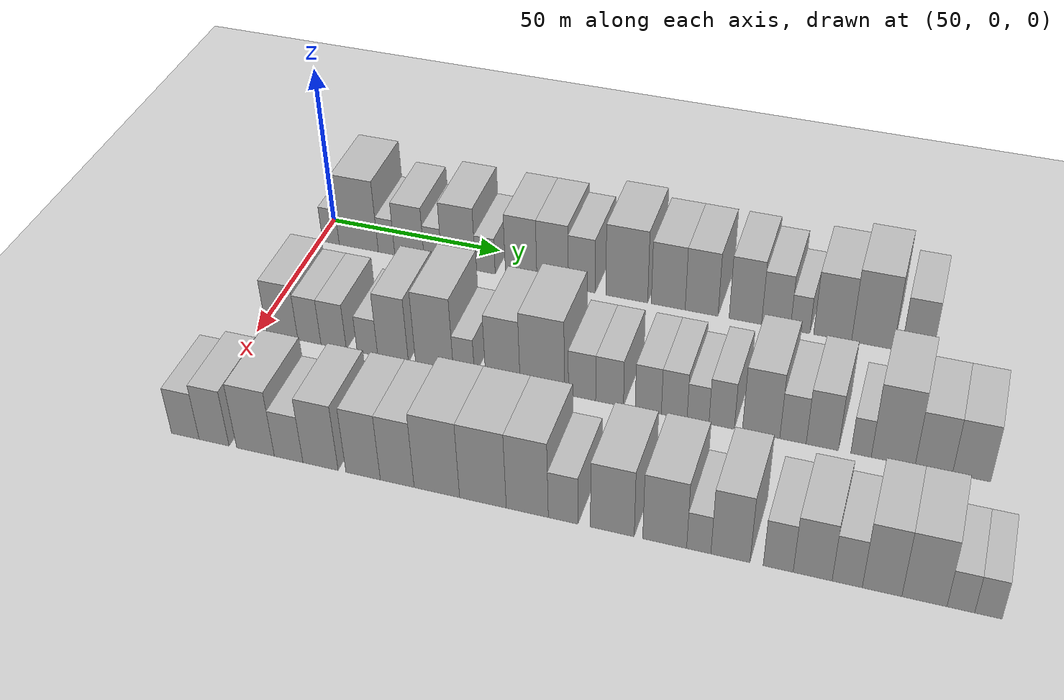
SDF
<sdf version="1.6">
 <world name="default">
  <include>
   <name>ground_plane_2</name>
   <uri>model://HANNAS_ground_plane</uri>
   <pose>100 0 0  0 0 0</pose>
  </include>
  <model name="building_43">
   <static>1</static>
   <pose>50.0000 3.2836 0 0.000000 0.000000 0.000000</pose>
   <link name="link">
    <pose>0 0 6.00 0 0 0</pose>
    <collision name="collision"><geometry><box><size>20.0000 5.0733 12.0000</size></box></geometry></collision>
    <visual name="visual">
     <cast_shadows>0</cast_shadows>
     <geometry><box><size>20.0000 5.0733 12.0000</size></box></geometry>
     <material>
      <script>
       <uri>model://HANNAS_wall/materials/scripts</uri>
       <uri>model://HANNAS_wall/materials/textures</uri>
       <name>vrc/HANNAS_wall</name>
      </script>
     </material>
    </visual>
   </link>
  </model>
  <model name="building_44">
   <static>1</static>
   <pose>50.0000 11.7085 0 0.000000 0.000000 0.000000</pose>
   <link name="link">
    <pose>0 0 12.00 0 0 0</pose>
    <collision name="collision"><geometry><box><size>20.0000 11.7766 24.0000</size></box></geometry></collision>
    <visual name="visual">
     <cast_shadows>0</cast_shadows>
     <geometry><box><size>20.0000 11.7766 24.0000</size></box></geometry>
     <material>
      <script>
       <uri>model://HANNAS_wall/materials/scripts</uri>
       <uri>model://HANNAS_wall/materials/textures</uri>
       <name>vrc/HANNAS_wall</name>
      </script>
     </material>
    </visual>
   </link>
  </model>
  <model name="building_45">
   <static>1</static>
   <pose>50.0000 20.0505 0 0.000000 0.000000 0.000000</pose>
   <link name="link">
    <pose>0 0 6.00 0 0 0</pose>
    <collision name="collision"><geometry><box><size>20.0000 4.9074 12.0000</size></box></geometry></collision>
    <visual name="visual">
     <cast_shadows>0</cast_shadows>
     <geometry><box><size>20.0000 4.9074 12.0000</size></box></geometry>
     <material>
      <script>
       <uri>model://HANNAS_wall/materials/scripts</uri>
       <uri>model://HANNAS_wall/materials/textures</uri>
       <name>vrc/HANNAS_wall</name>
      </script>
     </material>
    </visual>
   </link>
  </model>
  <model name="building_46">
   <static>1</static>
   <pose>50.0000 26.8823 0 0.000000 0.000000 0.000000</pose>
   <link name="link">
    <pose>0 0 9.00 0 0 0</pose>
    <collision name="collision"><geometry><box><size>20.0000 8.7563 18.0000</size></box></geometry></collision>
    <visual name="visual">
     <cast_shadows>0</cast_shadows>
     <geometry><box><size>20.0000 8.7563 18.0000</size></box></geometry>
     <material>
      <script>
       <uri>model://HANNAS_wall/materials/scripts</uri>
       <uri>model://HANNAS_wall/materials/textures</uri>
       <name>vrc/HANNAS_wall</name>
      </script>
     </material>
    </visual>
   </link>
  </model>
  <model name="building_47">
   <static>1</static>
   <pose>50.0000 33.8494 0 0.000000 0.000000 0.000000</pose>
   <link name="link">
    <pose>0 0 6.00 0 0 0</pose>
    <collision name="collision"><geometry><box><size>20.0000 5.1778 12.0000</size></box></geometry></collision>
    <visual name="visual">
     <cast_shadows>0</cast_shadows>
     <geometry><box><size>20.0000 5.1778 12.0000</size></box></geometry>
     <material>
      <script>
       <uri>model://HANNAS_wall/materials/scripts</uri>
       <uri>model://HANNAS_wall/materials/textures</uri>
       <name>vrc/HANNAS_wall</name>
      </script>
     </material>
    </visual>
   </link>
  </model>
  <model name="building_48">
   <static>1</static>
   <pose>50.0000 41.3604 0 0.000000 0.000000 0.000000</pose>
   <link name="link">
    <pose>0 0 10.50 0 0 0</pose>
    <collision name="collision"><geometry><box><size>20.0000 9.8442 21.0000</size></box></geometry></collision>
    <visual name="visual">
     <cast_shadows>0</cast_shadows>
     <geometry><box><size>20.0000 9.8442 21.0000</size></box></geometry>
     <material>
      <script>
       <uri>model://HANNAS_wall/materials/scripts</uri>
       <uri>model://HANNAS_wall/materials/textures</uri>
       <name>vrc/HANNAS_wall</name>
      </script>
     </material>
    </visual>
   </link>
  </model>
  <model name="building_49">
   <static>1</static>
   <pose>50.0000 49.1324 0 0.000000 0.000000 0.000000</pose>
   <link name="link">
    <pose>0 0 6.00 0 0 0</pose>
    <collision name="collision"><geometry><box><size>20.0000 5.6998 12.0000</size></box></geometry></collision>
    <visual name="visual">
     <cast_shadows>0</cast_shadows>
     <geometry><box><size>20.0000 5.6998 12.0000</size></box></geometry>
     <material>
      <script>
       <uri>model://HANNAS_wall/materials/scripts</uri>
       <uri>model://HANNAS_wall/materials/textures</uri>
       <name>vrc/HANNAS_wall</name>
      </script>
     </material>
    </visual>
   </link>
  </model>
  <model name="building_50">
   <static>1</static>
   <pose>50.0000 59.4849 0 0.000000 0.000000 0.000000</pose>
   <link name="link">
    <pose>0 0 10.50 0 0 0</pose>
    <collision name="collision"><geometry><box><size>20.0000 9.0052 21.0000</size></box></geometry></collision>
    <visual name="visual">
     <cast_shadows>0</cast_shadows>
     <geometry><box><size>20.0000 9.0052 21.0000</size></box></geometry>
     <material>
      <script>
       <uri>model://HANNAS_wall/materials/scripts</uri>
       <uri>model://HANNAS_wall/materials/textures</uri>
       <name>vrc/HANNAS_wall</name>
      </script>
     </material>
    </visual>
   </link>
  </model>
  <model name="building_51">
   <static>1</static>
   <pose>50.0000 68.4617 0 0.000000 0.000000 0.000000</pose>
   <link name="link">
    <pose>0 0 10.50 0 0 0</pose>
    <collision name="collision"><geometry><box><size>20.0000 8.9484 21.0000</size></box></geometry></collision>
    <visual name="visual">
     <cast_shadows>0</cast_shadows>
     <geometry><box><size>20.0000 8.9484 21.0000</size></box></geometry>
     <material>
      <script>
       <uri>model://HANNAS_wall/materials/scripts</uri>
       <uri>model://HANNAS_wall/materials/textures</uri>
       <name>vrc/HANNAS_wall</name>
      </script>
     </material>
    </visual>
   </link>
  </model>
  <model name="building_52">
   <static>1</static>
   <pose>50.0000 76.6912 0 0.000000 0.000000 0.000000</pose>
   <link name="link">
    <pose>0 0 9.00 0 0 0</pose>
    <collision name="collision"><geometry><box><size>20.0000 7.5105 18.0000</size></box></geometry></collision>
    <visual name="visual">
     <cast_shadows>0</cast_shadows>
     <geometry><box><size>20.0000 7.5105 18.0000</size></box></geometry>
     <material>
      <script>
       <uri>model://HANNAS_wall/materials/scripts</uri>
       <uri>model://HANNAS_wall/materials/textures</uri>
       <name>vrc/HANNAS_wall</name>
      </script>
     </material>
    </visual>
   </link>
  </model>
  <model name="building_53">
   <static>1</static>
   <pose>50.0000 89.2571 0 0.000000 0.000000 0.000000</pose>
   <link name="link">
    <pose>0 0 12.00 0 0 0</pose>
    <collision name="collision"><geometry><box><size>20.0000 11.6213 24.0000</size></box></geometry></collision>
    <visual name="visual">
     <cast_shadows>0</cast_shadows>
     <geometry><box><size>20.0000 11.6213 24.0000</size></box></geometry>
     <material>
      <script>
       <uri>model://HANNAS_wall/materials/scripts</uri>
       <uri>model://HANNAS_wall/materials/textures</uri>
       <name>vrc/HANNAS_wall</name>
      </script>
     </material>
    </visual>
   </link>
  </model>
  <model name="building_54">
   <static>1</static>
   <pose>50.0000 100.7231 0 0.000000 0.000000 0.000000</pose>
   <link name="link">
    <pose>0 0 10.50 0 0 0</pose>
    <collision name="collision"><geometry><box><size>20.0000 9.3108 21.0000</size></box></geometry></collision>
    <visual name="visual">
     <cast_shadows>0</cast_shadows>
     <geometry><box><size>20.0000 9.3108 21.0000</size></box></geometry>
     <material>
      <script>
       <uri>model://HANNAS_wall/materials/scripts</uri>
       <uri>model://HANNAS_wall/materials/textures</uri>
       <name>vrc/HANNAS_wall</name>
      </script>
     </material>
    </visual>
   </link>
  </model>
  <model name="building_55">
   <static>1</static>
   <pose>50.0000 109.8539 0 0.000000 0.000000 0.000000</pose>
   <link name="link">
    <pose>0 0 10.50 0 0 0</pose>
    <collision name="collision"><geometry><box><size>20.0000 8.9509 21.0000</size></box></geometry></collision>
    <visual name="visual">
     <cast_shadows>0</cast_shadows>
     <geometry><box><size>20.0000 8.9509 21.0000</size></box></geometry>
     <material>
      <script>
       <uri>model://HANNAS_wall/materials/scripts</uri>
       <uri>model://HANNAS_wall/materials/textures</uri>
       <name>vrc/HANNAS_wall</name>
      </script>
     </material>
    </visual>
   </link>
  </model>
  <model name="building_56">
   <static>1</static>
   <pose>50.0000 121.6870 0 0.000000 0.000000 0.000000</pose>
   <link name="link">
    <pose>0 0 10.50 0 0 0</pose>
    <collision name="collision"><geometry><box><size>20.0000 8.7154 21.0000</size></box></geometry></collision>
    <visual name="visual">
     <cast_shadows>0</cast_shadows>
     <geometry><box><size>20.0000 8.7154 21.0000</size></box></geometry>
     <material>
      <script>
       <uri>model://HANNAS_wall/materials/scripts</uri>
       <uri>model://HANNAS_wall/materials/textures</uri>
       <name>vrc/HANNAS_wall</name>
      </script>
     </material>
    </visual>
   </link>
  </model>
  <model name="building_57">
   <static>1</static>
   <pose>50.0000 129.8786 0 0.000000 0.000000 0.000000</pose>
   <link name="link">
    <pose>0 0 9.00 0 0 0</pose>
    <collision name="collision"><geometry><box><size>20.0000 7.6677 18.0000</size></box></geometry></collision>
    <visual name="visual">
     <cast_shadows>0</cast_shadows>
     <geometry><box><size>20.0000 7.6677 18.0000</size></box></geometry>
     <material>
      <script>
       <uri>model://HANNAS_wall/materials/scripts</uri>
       <uri>model://HANNAS_wall/materials/textures</uri>
       <name>vrc/HANNAS_wall</name>
      </script>
     </material>
    </visual>
   </link>
  </model>
  <model name="building_58">
   <static>1</static>
   <pose>50.0000 136.3000 0 0.000000 0.000000 0.000000</pose>
   <link name="link">
    <pose>0 0 6.00 0 0 0</pose>
    <collision name="collision"><geometry><box><size>20.0000 5.1751 12.0000</size></box></geometry></collision>
    <visual name="visual">
     <cast_shadows>0</cast_shadows>
     <geometry><box><size>20.0000 5.1751 12.0000</size></box></geometry>
     <material>
      <script>
       <uri>model://HANNAS_wall/materials/scripts</uri>
       <uri>model://HANNAS_wall/materials/textures</uri>
       <name>vrc/HANNAS_wall</name>
      </script>
     </material>
    </visual>
   </link>
  </model>
  <model name="building_59">
   <static>1</static>
   <pose>50.0000 144.8464 0 0.000000 0.000000 0.000000</pose>
   <link name="link">
    <pose>0 0 10.50 0 0 0</pose>
    <collision name="collision"><geometry><box><size>20.0000 9.9177 21.0000</size></box></geometry></collision>
    <visual name="visual">
     <cast_shadows>0</cast_shadows>
     <geometry><box><size>20.0000 9.9177 21.0000</size></box></geometry>
     <material>
      <script>
       <uri>model://HANNAS_wall/materials/scripts</uri>
       <uri>model://HANNAS_wall/materials/textures</uri>
       <name>vrc/HANNAS_wall</name>
      </script>
     </material>
    </visual>
   </link>
  </model>
  <model name="building_60">
   <static>1</static>
   <pose>50.0000 155.2566 0 0.000000 0.000000 0.000000</pose>
   <link name="link">
    <pose>0 0 12.00 0 0 0</pose>
    <collision name="collision"><geometry><box><size>20.0000 10.9029 24.0000</size></box></geometry></collision>
    <visual name="visual">
     <cast_shadows>0</cast_shadows>
     <geometry><box><size>20.0000 10.9029 24.0000</size></box></geometry>
     <material>
      <script>
       <uri>model://HANNAS_wall/materials/scripts</uri>
       <uri>model://HANNAS_wall/materials/textures</uri>
       <name>vrc/HANNAS_wall</name>
      </script>
     </material>
    </visual>
   </link>
  </model>
  <model name="building_61">
   <static>1</static>
   <pose>50.0000 166.7116 0 0.000000 0.000000 0.000000</pose>
   <link name="link">
    <pose>0 0 9.00 0 0 0</pose>
    <collision name="collision"><geometry><box><size>20.0000 8.0071 18.0000</size></box></geometry></collision>
    <visual name="visual">
     <cast_shadows>0</cast_shadows>
     <geometry><box><size>20.0000 8.0071 18.0000</size></box></geometry>
     <material>
      <script>
       <uri>model://HANNAS_wall/materials/scripts</uri>
       <uri>model://HANNAS_wall/materials/textures</uri>
       <name>vrc/HANNAS_wall</name>
      </script>
     </material>
    </visual>
   </link>
  </model>
  <model name="building_124">
   <static>1</static>
   <pose>90.0000 7.0804 0 0.000000 0.000000 0.000000</pose>
   <link name="link">
    <pose>0 0 9.00 0 0 0</pose>
    <collision name="collision"><geometry><box><size>20.0000 8.8271 18.0000</size></box></geometry></collision>
    <visual name="visual">
     <cast_shadows>0</cast_shadows>
     <geometry><box><size>20.0000 8.8271 18.0000</size></box></geometry>
     <material>
      <script>
       <uri>model://HANNAS_wall/materials/scripts</uri>
       <uri>model://HANNAS_wall/materials/textures</uri>
       <name>vrc/HANNAS_wall</name>
      </script>
     </material>
    </visual>
   </link>
  </model>
  <model name="building_125">
   <static>1</static>
   <pose>90.0000 14.7527 0 0.000000 0.000000 0.000000</pose>
   <link name="link">
    <pose>0 0 7.50 0 0 0</pose>
    <collision name="collision"><geometry><box><size>20.0000 6.5176 15.0000</size></box></geometry></collision>
    <visual name="visual">
     <cast_shadows>0</cast_shadows>
     <geometry><box><size>20.0000 6.5176 15.0000</size></box></geometry>
     <material>
      <script>
       <uri>model://HANNAS_wall/materials/scripts</uri>
       <uri>model://HANNAS_wall/materials/textures</uri>
       <name>vrc/HANNAS_wall</name>
      </script>
     </material>
    </visual>
   </link>
  </model>
  <model name="building_126">
   <static>1</static>
   <pose>90.0000 21.5738 0 0.000000 0.000000 0.000000</pose>
   <link name="link">
    <pose>0 0 7.50 0 0 0</pose>
    <collision name="collision"><geometry><box><size>20.0000 7.1247 15.0000</size></box></geometry></collision>
    <visual name="visual">
     <cast_shadows>0</cast_shadows>
     <geometry><box><size>20.0000 7.1247 15.0000</size></box></geometry>
     <material>
      <script>
       <uri>model://HANNAS_wall/materials/scripts</uri>
       <uri>model://HANNAS_wall/materials/textures</uri>
       <name>vrc/HANNAS_wall</name>
      </script>
     </material>
    </visual>
   </link>
  </model>
  <model name="building_127">
   <static>1</static>
   <pose>90.0000 30.9938 0 0.000000 0.000000 0.000000</pose>
   <link name="link">
    <pose>0 0 6.00 0 0 0</pose>
    <collision name="collision"><geometry><box><size>20.0000 5.7154 12.0000</size></box></geometry></collision>
    <visual name="visual">
     <cast_shadows>0</cast_shadows>
     <geometry><box><size>20.0000 5.7154 12.0000</size></box></geometry>
     <material>
      <script>
       <uri>model://HANNAS_wall/materials/scripts</uri>
       <uri>model://HANNAS_wall/materials/textures</uri>
       <name>vrc/HANNAS_wall</name>
      </script>
     </material>
    </visual>
   </link>
  </model>
  <model name="building_128">
   <static>1</static>
   <pose>90.0000 38.0644 0 0.000000 0.000000 0.000000</pose>
   <link name="link">
    <pose>0 0 10.50 0 0 0</pose>
    <collision name="collision"><geometry><box><size>20.0000 8.4258 21.0000</size></box></geometry></collision>
    <visual name="visual">
     <cast_shadows>0</cast_shadows>
     <geometry><box><size>20.0000 8.4258 21.0000</size></box></geometry>
     <material>
      <script>
       <uri>model://HANNAS_wall/materials/scripts</uri>
       <uri>model://HANNAS_wall/materials/textures</uri>
       <name>vrc/HANNAS_wall</name>
      </script>
     </material>
    </visual>
   </link>
  </model>
  <model name="building_129">
   <static>1</static>
   <pose>90.0000 49.4098 0 0.000000 0.000000 0.000000</pose>
   <link name="link">
    <pose>0 0 12.00 0 0 0</pose>
    <collision name="collision"><geometry><box><size>20.0000 10.2650 24.0000</size></box></geometry></collision>
    <visual name="visual">
     <cast_shadows>0</cast_shadows>
     <geometry><box><size>20.0000 10.2650 24.0000</size></box></geometry>
     <material>
      <script>
       <uri>model://HANNAS_wall/materials/scripts</uri>
       <uri>model://HANNAS_wall/materials/textures</uri>
       <name>vrc/HANNAS_wall</name>
      </script>
     </material>
    </visual>
   </link>
  </model>
  <model name="building_130">
   <static>1</static>
   <pose>90.0000 57.3746 0 0.000000 0.000000 0.000000</pose>
   <link name="link">
    <pose>0 0 6.00 0 0 0</pose>
    <collision name="collision"><geometry><box><size>20.0000 5.6645 12.0000</size></box></geometry></collision>
    <visual name="visual">
     <cast_shadows>0</cast_shadows>
     <geometry><box><size>20.0000 5.6645 12.0000</size></box></geometry>
     <material>
      <script>
       <uri>model://HANNAS_wall/materials/scripts</uri>
       <uri>model://HANNAS_wall/materials/textures</uri>
       <name>vrc/HANNAS_wall</name>
      </script>
     </material>
    </visual>
   </link>
  </model>
  <model name="building_131">
   <static>1</static>
   <pose>90.0000 67.7954 0 0.000000 0.000000 0.000000</pose>
   <link name="link">
    <pose>0 0 10.50 0 0 0</pose>
    <collision name="collision"><geometry><box><size>20.0000 9.1771 21.0000</size></box></geometry></collision>
    <visual name="visual">
     <cast_shadows>0</cast_shadows>
     <geometry><box><size>20.0000 9.1771 21.0000</size></box></geometry>
     <material>
      <script>
       <uri>model://HANNAS_wall/materials/scripts</uri>
       <uri>model://HANNAS_wall/materials/textures</uri>
       <name>vrc/HANNAS_wall</name>
      </script>
     </material>
    </visual>
   </link>
  </model>
  <model name="building_132">
   <static>1</static>
   <pose>90.0000 78.2445 0 0.000000 0.000000 0.000000</pose>
   <link name="link">
    <pose>0 0 12.00 0 0 0</pose>
    <collision name="collision"><geometry><box><size>20.0000 11.7213 24.0000</size></box></geometry></collision>
    <visual name="visual">
     <cast_shadows>0</cast_shadows>
     <geometry><box><size>20.0000 11.7213 24.0000</size></box></geometry>
     <material>
      <script>
       <uri>model://HANNAS_wall/materials/scripts</uri>
       <uri>model://HANNAS_wall/materials/textures</uri>
       <name>vrc/HANNAS_wall</name>
      </script>
     </material>
    </visual>
   </link>
  </model>
  <model name="building_133">
   <static>1</static>
   <pose>90.0000 88.6313 0 0.000000 0.000000 0.000000</pose>
   <link name="link">
    <pose>0 0 7.50 0 0 0</pose>
    <collision name="collision"><geometry><box><size>20.0000 7.0521 15.0000</size></box></geometry></collision>
    <visual name="visual">
     <cast_shadows>0</cast_shadows>
     <geometry><box><size>20.0000 7.0521 15.0000</size></box></geometry>
     <material>
      <script>
       <uri>model://HANNAS_wall/materials/scripts</uri>
       <uri>model://HANNAS_wall/materials/textures</uri>
       <name>vrc/HANNAS_wall</name>
      </script>
     </material>
    </visual>
   </link>
  </model>
  <model name="building_134">
   <static>1</static>
   <pose>90.0000 95.7461 0 0.000000 0.000000 0.000000</pose>
   <link name="link">
    <pose>0 0 7.50 0 0 0</pose>
    <collision name="collision"><geometry><box><size>20.0000 7.1775 15.0000</size></box></geometry></collision>
    <visual name="visual">
     <cast_shadows>0</cast_shadows>
     <geometry><box><size>20.0000 7.1775 15.0000</size></box></geometry>
     <material>
      <script>
       <uri>model://HANNAS_wall/materials/scripts</uri>
       <uri>model://HANNAS_wall/materials/textures</uri>
       <name>vrc/HANNAS_wall</name>
      </script>
     </material>
    </visual>
   </link>
  </model>
  <model name="building_135">
   <static>1</static>
   <pose>90.0000 105.6737 0 0.000000 0.000000 0.000000</pose>
   <link name="link">
    <pose>0 0 7.50 0 0 0</pose>
    <collision name="collision"><geometry><box><size>20.0000 6.6779 15.0000</size></box></geometry></collision>
    <visual name="visual">
     <cast_shadows>0</cast_shadows>
     <geometry><box><size>20.0000 6.6779 15.0000</size></box></geometry>
     <material>
      <script>
       <uri>model://HANNAS_wall/materials/scripts</uri>
       <uri>model://HANNAS_wall/materials/textures</uri>
       <name>vrc/HANNAS_wall</name>
      </script>
     </material>
    </visual>
   </link>
  </model>
  <model name="building_136">
   <static>1</static>
   <pose>90.0000 112.2711 0 0.000000 0.000000 0.000000</pose>
   <link name="link">
    <pose>0 0 7.50 0 0 0</pose>
    <collision name="collision"><geometry><box><size>20.0000 6.5168 15.0000</size></box></geometry></collision>
    <visual name="visual">
     <cast_shadows>0</cast_shadows>
     <geometry><box><size>20.0000 6.5168 15.0000</size></box></geometry>
     <material>
      <script>
       <uri>model://HANNAS_wall/materials/scripts</uri>
       <uri>model://HANNAS_wall/materials/textures</uri>
       <name>vrc/HANNAS_wall</name>
      </script>
     </material>
    </visual>
   </link>
  </model>
  <model name="building_137">
   <static>1</static>
   <pose>90.0000 118.2828 0 0.000000 0.000000 0.000000</pose>
   <link name="link">
    <pose>0 0 6.00 0 0 0</pose>
    <collision name="collision"><geometry><box><size>20.0000 5.5065 12.0000</size></box></geometry></collision>
    <visual name="visual">
     <cast_shadows>0</cast_shadows>
     <geometry><box><size>20.0000 5.5065 12.0000</size></box></geometry>
     <material>
      <script>
       <uri>model://HANNAS_wall/materials/scripts</uri>
       <uri>model://HANNAS_wall/materials/textures</uri>
       <name>vrc/HANNAS_wall</name>
      </script>
     </material>
    </visual>
   </link>
  </model>
  <model name="building_138">
   <static>1</static>
   <pose>90.0000 124.2085 0 0.000000 0.000000 0.000000</pose>
   <link name="link">
    <pose>0 0 7.50 0 0 0</pose>
    <collision name="collision"><geometry><box><size>20.0000 6.3449 15.0000</size></box></geometry></collision>
    <visual name="visual">
     <cast_shadows>0</cast_shadows>
     <geometry><box><size>20.0000 6.3449 15.0000</size></box></geometry>
     <material>
      <script>
       <uri>model://HANNAS_wall/materials/scripts</uri>
       <uri>model://HANNAS_wall/materials/textures</uri>
       <name>vrc/HANNAS_wall</name>
      </script>
     </material>
    </visual>
   </link>
  </model>
  <model name="building_139">
   <static>1</static>
   <pose>90.0000 133.9994 0 0.000000 0.000000 0.000000</pose>
   <link name="link">
    <pose>0 0 10.50 0 0 0</pose>
    <collision name="collision"><geometry><box><size>20.0000 9.2369 21.0000</size></box></geometry></collision>
    <visual name="visual">
     <cast_shadows>0</cast_shadows>
     <geometry><box><size>20.0000 9.2369 21.0000</size></box></geometry>
     <material>
      <script>
       <uri>model://HANNAS_wall/materials/scripts</uri>
       <uri>model://HANNAS_wall/materials/textures</uri>
       <name>vrc/HANNAS_wall</name>
      </script>
     </material>
    </visual>
   </link>
  </model>
  <model name="building_140">
   <static>1</static>
   <pose>90.0000 141.8524 0 0.000000 0.000000 0.000000</pose>
   <link name="link">
    <pose>0 0 7.50 0 0 0</pose>
    <collision name="collision"><geometry><box><size>20.0000 6.4691 15.0000</size></box></geometry></collision>
    <visual name="visual">
     <cast_shadows>0</cast_shadows>
     <geometry><box><size>20.0000 6.4691 15.0000</size></box></geometry>
     <material>
      <script>
       <uri>model://HANNAS_wall/materials/scripts</uri>
       <uri>model://HANNAS_wall/materials/textures</uri>
       <name>vrc/HANNAS_wall</name>
      </script>
     </material>
    </visual>
   </link>
  </model>
  <model name="building_141">
   <static>1</static>
   <pose>90.0000 149.0000 0 0.000000 0.000000 0.000000</pose>
   <link name="link">
    <pose>0 0 9.00 0 0 0</pose>
    <collision name="collision"><geometry><box><size>20.0000 7.8261 18.0000</size></box></geometry></collision>
    <visual name="visual">
     <cast_shadows>0</cast_shadows>
     <geometry><box><size>20.0000 7.8261 18.0000</size></box></geometry>
     <material>
      <script>
       <uri>model://HANNAS_wall/materials/scripts</uri>
       <uri>model://HANNAS_wall/materials/textures</uri>
       <name>vrc/HANNAS_wall</name>
      </script>
     </material>
    </visual>
   </link>
  </model>
  <model name="building_142">
   <static>1</static>
   <pose>90.0000 158.3597 0 0.000000 0.000000 0.000000</pose>
   <link name="link">
    <pose>0 0 6.00 0 0 0</pose>
    <collision name="collision"><geometry><box><size>20.0000 4.8932 12.0000</size></box></geometry></collision>
    <visual name="visual">
     <cast_shadows>0</cast_shadows>
     <geometry><box><size>20.0000 4.8932 12.0000</size></box></geometry>
     <material>
      <script>
       <uri>model://HANNAS_wall/materials/scripts</uri>
       <uri>model://HANNAS_wall/materials/textures</uri>
       <name>vrc/HANNAS_wall</name>
      </script>
     </material>
    </visual>
   </link>
  </model>
  <model name="building_143">
   <static>1</static>
   <pose>90.0000 166.0182 0 0.000000 0.000000 0.000000</pose>
   <link name="link">
    <pose>0 0 12.00 0 0 0</pose>
    <collision name="collision"><geometry><box><size>20.0000 10.4238 24.0000</size></box></geometry></collision>
    <visual name="visual">
     <cast_shadows>0</cast_shadows>
     <geometry><box><size>20.0000 10.4238 24.0000</size></box></geometry>
     <material>
      <script>
       <uri>model://HANNAS_wall/materials/scripts</uri>
       <uri>model://HANNAS_wall/materials/textures</uri>
       <name>vrc/HANNAS_wall</name>
      </script>
     </material>
    </visual>
   </link>
  </model>
  <model name="building_144">
   <static>1</static>
   <pose>90.0000 175.6420 0 0.000000 0.000000 0.000000</pose>
   <link name="link">
    <pose>0 0 9.00 0 0 0</pose>
    <collision name="collision"><geometry><box><size>20.0000 8.8238 18.0000</size></box></geometry></collision>
    <visual name="visual">
     <cast_shadows>0</cast_shadows>
     <geometry><box><size>20.0000 8.8238 18.0000</size></box></geometry>
     <material>
      <script>
       <uri>model://HANNAS_wall/materials/scripts</uri>
       <uri>model://HANNAS_wall/materials/textures</uri>
       <name>vrc/HANNAS_wall</name>
      </script>
     </material>
    </visual>
   </link>
  </model>
  <model name="building_145">
   <static>1</static>
   <pose>90.0000 184.5113 0 0.000000 0.000000 0.000000</pose>
   <link name="link">
    <pose>0 0 9.00 0 0 0</pose>
    <collision name="collision"><geometry><box><size>20.0000 8.9148 18.0000</size></box></geometry></collision>
    <visual name="visual">
     <cast_shadows>0</cast_shadows>
     <geometry><box><size>20.0000 8.9148 18.0000</size></box></geometry>
     <material>
      <script>
       <uri>model://HANNAS_wall/materials/scripts</uri>
       <uri>model://HANNAS_wall/materials/textures</uri>
       <name>vrc/HANNAS_wall</name>
      </script>
     </material>
    </visual>
   </link>
  </model>
  <model name="building_214">
   <static>1</static>
   <pose>130.0000 0.0378 0 0.000000 0.000000 0.000000</pose>
   <link name="link">
    <pose>0 0 7.50 0 0 0</pose>
    <collision name="collision"><geometry><box><size>20.0000 7.4115 15.0000</size></box></geometry></collision>
    <visual name="visual">
     <cast_shadows>0</cast_shadows>
     <geometry><box><size>20.0000 7.4115 15.0000</size></box></geometry>
     <material>
      <script>
       <uri>model://HANNAS_wall/materials/scripts</uri>
       <uri>model://HANNAS_wall/materials/textures</uri>
       <name>vrc/HANNAS_wall</name>
      </script>
     </material>
    </visual>
   </link>
  </model>
  <model name="building_215">
   <static>1</static>
   <pose>130.0000 7.7299 0 0.000000 0.000000 0.000000</pose>
   <link name="link">
    <pose>0 0 9.00 0 0 0</pose>
    <collision name="collision"><geometry><box><size>20.0000 7.9728 18.0000</size></box></geometry></collision>
    <visual name="visual">
     <cast_shadows>0</cast_shadows>
     <geometry><box><size>20.0000 7.9728 18.0000</size></box></geometry>
     <material>
      <script>
       <uri>model://HANNAS_wall/materials/scripts</uri>
       <uri>model://HANNAS_wall/materials/textures</uri>
       <name>vrc/HANNAS_wall</name>
      </script>
     </material>
    </visual>
   </link>
  </model>
  <model name="building_216">
   <static>1</static>
   <pose>130.0000 18.6816 0 0.000000 0.000000 0.000000</pose>
   <link name="link">
    <pose>0 0 10.50 0 0 0</pose>
    <collision name="collision"><geometry><box><size>20.0000 9.9307 21.0000</size></box></geometry></collision>
    <visual name="visual">
     <cast_shadows>0</cast_shadows>
     <geometry><box><size>20.0000 9.9307 21.0000</size></box></geometry>
     <material>
      <script>
       <uri>model://HANNAS_wall/materials/scripts</uri>
       <uri>model://HANNAS_wall/materials/textures</uri>
       <name>vrc/HANNAS_wall</name>
      </script>
     </material>
    </visual>
   </link>
  </model>
  <model name="building_217">
   <static>1</static>
   <pose>130.0000 27.3718 0 0.000000 0.000000 0.000000</pose>
   <link name="link">
    <pose>0 0 7.50 0 0 0</pose>
    <collision name="collision"><geometry><box><size>20.0000 7.4497 15.0000</size></box></geometry></collision>
    <visual name="visual">
     <cast_shadows>0</cast_shadows>
     <geometry><box><size>20.0000 7.4497 15.0000</size></box></geometry>
     <material>
      <script>
       <uri>model://HANNAS_wall/materials/scripts</uri>
       <uri>model://HANNAS_wall/materials/textures</uri>
       <name>vrc/HANNAS_wall</name>
      </script>
     </material>
    </visual>
   </link>
  </model>
  <model name="building_218">
   <static>1</static>
   <pose>130.0000 35.6309 0 0.000000 0.000000 0.000000</pose>
   <link name="link">
    <pose>0 0 10.50 0 0 0</pose>
    <collision name="collision"><geometry><box><size>20.0000 9.0686 21.0000</size></box></geometry></collision>
    <visual name="visual">
     <cast_shadows>0</cast_shadows>
     <geometry><box><size>20.0000 9.0686 21.0000</size></box></geometry>
     <material>
      <script>
       <uri>model://HANNAS_wall/materials/scripts</uri>
       <uri>model://HANNAS_wall/materials/textures</uri>
       <name>vrc/HANNAS_wall</name>
      </script>
     </material>
    </visual>
   </link>
  </model>
  <model name="building_219">
   <static>1</static>
   <pose>130.0000 46.5408 0 0.000000 0.000000 0.000000</pose>
   <link name="link">
    <pose>0 0 10.50 0 0 0</pose>
    <collision name="collision"><geometry><box><size>20.0000 8.7511 21.0000</size></box></geometry></collision>
    <visual name="visual">
     <cast_shadows>0</cast_shadows>
     <geometry><box><size>20.0000 8.7511 21.0000</size></box></geometry>
     <material>
      <script>
       <uri>model://HANNAS_wall/materials/scripts</uri>
       <uri>model://HANNAS_wall/materials/textures</uri>
       <name>vrc/HANNAS_wall</name>
      </script>
     </material>
    </visual>
   </link>
  </model>
  <model name="building_220">
   <static>1</static>
   <pose>130.0000 55.1814 0 0.000000 0.000000 0.000000</pose>
   <link name="link">
    <pose>0 0 10.50 0 0 0</pose>
    <collision name="collision"><geometry><box><size>20.0000 8.5300 21.0000</size></box></geometry></collision>
    <visual name="visual">
     <cast_shadows>0</cast_shadows>
     <geometry><box><size>20.0000 8.5300 21.0000</size></box></geometry>
     <material>
      <script>
       <uri>model://HANNAS_wall/materials/scripts</uri>
       <uri>model://HANNAS_wall/materials/textures</uri>
       <name>vrc/HANNAS_wall</name>
      </script>
     </material>
    </visual>
   </link>
  </model>
  <model name="building_221">
   <static>1</static>
   <pose>130.0000 65.1038 0 0.000000 0.000000 0.000000</pose>
   <link name="link">
    <pose>0 0 12.00 0 0 0</pose>
    <collision name="collision"><geometry><box><size>20.0000 11.3148 24.0000</size></box></geometry></collision>
    <visual name="visual">
     <cast_shadows>0</cast_shadows>
     <geometry><box><size>20.0000 11.3148 24.0000</size></box></geometry>
     <material>
      <script>
       <uri>model://HANNAS_wall/materials/scripts</uri>
       <uri>model://HANNAS_wall/materials/textures</uri>
       <name>vrc/HANNAS_wall</name>
      </script>
     </material>
    </visual>
   </link>
  </model>
  <model name="building_222">
   <static>1</static>
   <pose>130.0000 76.4997 0 0.000000 0.000000 0.000000</pose>
   <link name="link">
    <pose>0 0 12.00 0 0 0</pose>
    <collision name="collision"><geometry><box><size>20.0000 11.4770 24.0000</size></box></geometry></collision>
    <visual name="visual">
     <cast_shadows>0</cast_shadows>
     <geometry><box><size>20.0000 11.4770 24.0000</size></box></geometry>
     <material>
      <script>
       <uri>model://HANNAS_wall/materials/scripts</uri>
       <uri>model://HANNAS_wall/materials/textures</uri>
       <name>vrc/HANNAS_wall</name>
      </script>
     </material>
    </visual>
   </link>
  </model>
  <model name="building_223">
   <static>1</static>
   <pose>130.0000 87.3257 0 0.000000 0.000000 0.000000</pose>
   <link name="link">
    <pose>0 0 12.00 0 0 0</pose>
    <collision name="collision"><geometry><box><size>20.0000 10.1751 24.0000</size></box></geometry></collision>
    <visual name="visual">
     <cast_shadows>0</cast_shadows>
     <geometry><box><size>20.0000 10.1751 24.0000</size></box></geometry>
     <material>
      <script>
       <uri>model://HANNAS_wall/materials/scripts</uri>
       <uri>model://HANNAS_wall/materials/textures</uri>
       <name>vrc/HANNAS_wall</name>
      </script>
     </material>
    </visual>
   </link>
  </model>
  <model name="building_224">
   <static>1</static>
   <pose>130.0000 95.9676 0 0.000000 0.000000 0.000000</pose>
   <link name="link">
    <pose>0 0 7.50 0 0 0</pose>
    <collision name="collision"><geometry><box><size>20.0000 7.1086 15.0000</size></box></geometry></collision>
    <visual name="visual">
     <cast_shadows>0</cast_shadows>
     <geometry><box><size>20.0000 7.1086 15.0000</size></box></geometry>
     <material>
      <script>
       <uri>model://HANNAS_wall/materials/scripts</uri>
       <uri>model://HANNAS_wall/materials/textures</uri>
       <name>vrc/HANNAS_wall</name>
      </script>
     </material>
    </visual>
   </link>
  </model>
  <model name="building_225">
   <static>1</static>
   <pose>130.0000 107.6835 0 0.000000 0.000000 0.000000</pose>
   <link name="link">
    <pose>0 0 10.50 0 0 0</pose>
    <collision name="collision"><geometry><box><size>20.0000 10.3234 21.0000</size></box></geometry></collision>
    <visual name="visual">
     <cast_shadows>0</cast_shadows>
     <geometry><box><size>20.0000 10.3234 21.0000</size></box></geometry>
     <material>
      <script>
       <uri>model://HANNAS_wall/materials/scripts</uri>
       <uri>model://HANNAS_wall/materials/textures</uri>
       <name>vrc/HANNAS_wall</name>
      </script>
     </material>
    </visual>
   </link>
  </model>
  <model name="building_226">
   <static>1</static>
   <pose>130.0000 119.9584 0 0.000000 0.000000 0.000000</pose>
   <link name="link">
    <pose>0 0 10.50 0 0 0</pose>
    <collision name="collision"><geometry><box><size>20.0000 10.2263 21.0000</size></box></geometry></collision>
    <visual name="visual">
     <cast_shadows>0</cast_shadows>
     <geometry><box><size>20.0000 10.2263 21.0000</size></box></geometry>
     <material>
      <script>
       <uri>model://HANNAS_wall/materials/scripts</uri>
       <uri>model://HANNAS_wall/materials/textures</uri>
       <name>vrc/HANNAS_wall</name>
      </script>
     </material>
    </visual>
   </link>
  </model>
  <model name="building_227">
   <static>1</static>
   <pose>130.0000 127.8656 0 0.000000 0.000000 0.000000</pose>
   <link name="link">
    <pose>0 0 6.00 0 0 0</pose>
    <collision name="collision"><geometry><box><size>20.0000 5.5883 12.0000</size></box></geometry></collision>
    <visual name="visual">
     <cast_shadows>0</cast_shadows>
     <geometry><box><size>20.0000 5.5883 12.0000</size></box></geometry>
     <material>
      <script>
       <uri>model://HANNAS_wall/materials/scripts</uri>
       <uri>model://HANNAS_wall/materials/textures</uri>
       <name>vrc/HANNAS_wall</name>
      </script>
     </material>
    </visual>
   </link>
  </model>
  <model name="building_228">
   <static>1</static>
   <pose>130.0000 135.1273 0 0.000000 0.000000 0.000000</pose>
   <link name="link">
    <pose>0 0 10.50 0 0 0</pose>
    <collision name="collision"><geometry><box><size>20.0000 8.9349 21.0000</size></box></geometry></collision>
    <visual name="visual">
     <cast_shadows>0</cast_shadows>
     <geometry><box><size>20.0000 8.9349 21.0000</size></box></geometry>
     <material>
      <script>
       <uri>model://HANNAS_wall/materials/scripts</uri>
       <uri>model://HANNAS_wall/materials/textures</uri>
       <name>vrc/HANNAS_wall</name>
      </script>
     </material>
    </visual>
   </link>
  </model>
  <model name="building_229">
   <static>1</static>
   <pose>130.0000 145.9703 0 0.000000 0.000000 0.000000</pose>
   <link name="link">
    <pose>0 0 7.50 0 0 0</pose>
    <collision name="collision"><geometry><box><size>20.0000 6.7512 15.0000</size></box></geometry></collision>
    <visual name="visual">
     <cast_shadows>0</cast_shadows>
     <geometry><box><size>20.0000 6.7512 15.0000</size></box></geometry>
     <material>
      <script>
       <uri>model://HANNAS_wall/materials/scripts</uri>
       <uri>model://HANNAS_wall/materials/textures</uri>
       <name>vrc/HANNAS_wall</name>
      </script>
     </material>
    </visual>
   </link>
  </model>
  <model name="building_230">
   <static>1</static>
   <pose>130.0000 153.6941 0 0.000000 0.000000 0.000000</pose>
   <link name="link">
    <pose>0 0 9.00 0 0 0</pose>
    <collision name="collision"><geometry><box><size>20.0000 8.6963 18.0000</size></box></geometry></collision>
    <visual name="visual">
     <cast_shadows>0</cast_shadows>
     <geometry><box><size>20.0000 8.6963 18.0000</size></box></geometry>
     <material>
      <script>
       <uri>model://HANNAS_wall/materials/scripts</uri>
       <uri>model://HANNAS_wall/materials/textures</uri>
       <name>vrc/HANNAS_wall</name>
      </script>
     </material>
    </visual>
   </link>
  </model>
  <model name="building_231">
   <static>1</static>
   <pose>130.0000 161.3746 0 0.000000 0.000000 0.000000</pose>
   <link name="link">
    <pose>0 0 7.50 0 0 0</pose>
    <collision name="collision"><geometry><box><size>20.0000 6.6645 15.0000</size></box></geometry></collision>
    <visual name="visual">
     <cast_shadows>0</cast_shadows>
     <geometry><box><size>20.0000 6.6645 15.0000</size></box></geometry>
     <material>
      <script>
       <uri>model://HANNAS_wall/materials/scripts</uri>
       <uri>model://HANNAS_wall/materials/textures</uri>
       <name>vrc/HANNAS_wall</name>
      </script>
     </material>
    </visual>
   </link>
  </model>
  <model name="building_232">
   <static>1</static>
   <pose>130.0000 169.0434 0 0.000000 0.000000 0.000000</pose>
   <link name="link">
    <pose>0 0 10.50 0 0 0</pose>
    <collision name="collision"><geometry><box><size>20.0000 8.6731 21.0000</size></box></geometry></collision>
    <visual name="visual">
     <cast_shadows>0</cast_shadows>
     <geometry><box><size>20.0000 8.6731 21.0000</size></box></geometry>
     <material>
      <script>
       <uri>model://HANNAS_wall/materials/scripts</uri>
       <uri>model://HANNAS_wall/materials/textures</uri>
       <name>vrc/HANNAS_wall</name>
      </script>
     </material>
    </visual>
   </link>
  </model>
  <model name="building_233">
   <static>1</static>
   <pose>130.0000 178.2681 0 0.000000 0.000000 0.000000</pose>
   <link name="link">
    <pose>0 0 10.50 0 0 0</pose>
    <collision name="collision"><geometry><box><size>20.0000 9.7764 21.0000</size></box></geometry></collision>
    <visual name="visual">
     <cast_shadows>0</cast_shadows>
     <geometry><box><size>20.0000 9.7764 21.0000</size></box></geometry>
     <material>
      <script>
       <uri>model://HANNAS_wall/materials/scripts</uri>
       <uri>model://HANNAS_wall/materials/textures</uri>
       <name>vrc/HANNAS_wall</name>
      </script>
     </material>
    </visual>
   </link>
  </model>
  <model name="building_234">
   <static>1</static>
   <pose>130.0000 186.1268 0 0.000000 0.000000 0.000000</pose>
   <link name="link">
    <pose>0 0 6.00 0 0 0</pose>
    <collision name="collision"><geometry><box><size>20.0000 5.9412 12.0000</size></box></geometry></collision>
    <visual name="visual">
     <cast_shadows>0</cast_shadows>
     <geometry><box><size>20.0000 5.9412 12.0000</size></box></geometry>
     <material>
      <script>
       <uri>model://HANNAS_wall/materials/scripts</uri>
       <uri>model://HANNAS_wall/materials/textures</uri>
       <name>vrc/HANNAS_wall</name>
      </script>
     </material>
    </visual>
   </link>
  </model>
  <model name="building_235">
   <static>1</static>
   <pose>130.0000 192.0127 0 0.000000 0.000000 0.000000</pose>
   <link name="link">
    <pose>0 0 6.00 0 0 0</pose>
    <collision name="collision"><geometry><box><size>20.0000 5.8306 12.0000</size></box></geometry></collision>
    <visual name="visual">
     <cast_shadows>0</cast_shadows>
     <geometry><box><size>20.0000 5.8306 12.0000</size></box></geometry>
     <material>
      <script>
       <uri>model://HANNAS_wall/materials/scripts</uri>
       <uri>model://HANNAS_wall/materials/textures</uri>
       <name>vrc/HANNAS_wall</name>
      </script>
     </material>
    </visual>
   </link>
  </model>
 </world>
</sdf>
